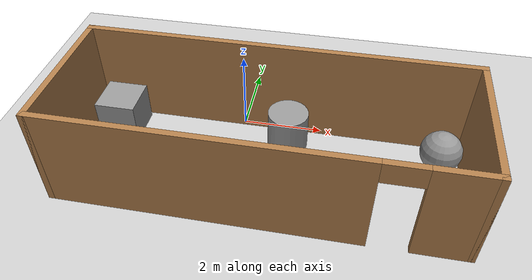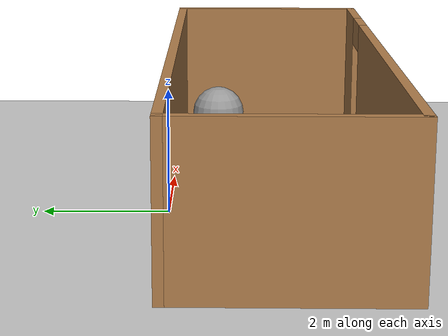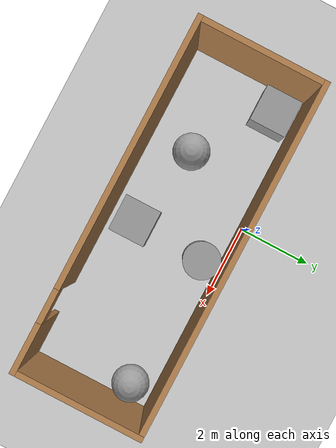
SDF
<sdf version="1.7">
 <world name="default">
  <light name="sun" type="directional">
   <pose>0 0 10 0 -0 0</pose>
   <diffuse>0.8 0.8 0.8 1</diffuse>
   <specular>0.2 0.2 0.2 1</specular>
   <attenuation>
    <range>1000</range>
    <constant>0.9</constant>
    <linear>0.01</linear>
    <quadratic>0.001</quadratic>
   </attenuation>
   <direction>-0.5 0.1 -0.9</direction>
   <spot><inner_angle>0</inner_angle><outer_angle>0</outer_angle><falloff>0</falloff></spot>
  </light>
  <model name="ground_plane">
   <static>1</static>
   <link name="link">
    <collision name="collision">
     <geometry><plane><normal>0 0 1</normal><size>100 100</size></plane></geometry>
     <surface>
      <contact><collide_bitmask>65535</collide_bitmask></contact>
      <friction><ode><mu>100</mu><mu2>50</mu2></ode></friction>
     </surface>
    </collision>
    <visual name="visual">
     <cast_shadows>0</cast_shadows>
     <geometry><plane><normal>0 0 1</normal><size>100 100</size></plane></geometry>
     <material>
      <script><uri>file://media/materials/scripts/gazebo.material</uri><name>Gazebo/Grey</name></script>
     </material>
    </visual>
   </link>
  </model>
  <gravity>0 0 -9.8</gravity>
  <magnetic_field>6e-06 2.3e-05 -4.2e-05</magnetic_field>
  <atmosphere type="adiabatic"/>
  <physics type="ode">
   <max_step_size>0.001</max_step_size>
   <real_time_factor>1</real_time_factor>
   <real_time_update_rate>1000</real_time_update_rate>
  </physics>
  <scene><ambient>0.4 0.4 0.4 1</ambient><background>0.7 0.7 0.7 1</background><shadows>1</shadows></scene>
  <spherical_coordinates>
   <surface_model>EARTH_WGS84</surface_model>
   <latitude_deg>0</latitude_deg>
   <longitude_deg>0</longitude_deg>
   <elevation>0</elevation>
   <heading_deg>0</heading_deg>
  </spherical_coordinates>
  <model name="Untitled">
   <pose>0.855 -1.715 0 0 -0 0</pose>
   <link name="Wall_0">
    <pose>-0 -1.675 0 0 -0 0</pose>
    <visual name="Wall_0_Visual_0">
     <pose>-1.12713 0 1.25 0 -0 0</pose>
     <geometry><box><size>7.24574 0.15 2.5</size></box></geometry>
     <material>
      <script><uri>file://media/materials/scripts/gazebo.material</uri><name>Gazebo/Wood</name></script>
      <ambient>1 1 1 1</ambient>
     </material>
     <meta><layer>0</layer></meta>
    </visual>
    <collision name="Wall_0_Collision_0">
     <geometry><box><size>7.24574 0.15 2.5</size></box></geometry>
     <pose>-1.12713 0 1.25 0 -0 0</pose>
    </collision>
    <visual name="Wall_0_Visual_1">
     <pose>4.07287 0 1.25 0 -0 0</pose>
     <geometry><box><size>1.35426 0.15 2.5</size></box></geometry>
     <material>
      <script><uri>file://media/materials/scripts/gazebo.material</uri><name>Gazebo/Wood</name></script>
      <ambient>1 1 1 1</ambient>
     </material>
     <meta><layer>0</layer></meta>
    </visual>
    <collision name="Wall_0_Collision_1">
     <geometry><box><size>1.35426 0.15 2.5</size></box></geometry>
     <pose>4.07287 0 1.25 0 -0 0</pose>
    </collision>
    <visual name="Wall_0_Visual_2">
     <pose>2.94574 0 2.25 0 -0 0</pose>
     <geometry><box><size>0.9 0.15 0.5</size></box></geometry>
     <material>
      <script><uri>file://media/materials/scripts/gazebo.material</uri><name>Gazebo/Wood</name></script>
      <ambient>1 1 1 1</ambient>
     </material>
     <meta><layer>0</layer></meta>
    </visual>
    <collision name="Wall_0_Collision_2">
     <geometry><box><size>0.9 0.15 0.5</size></box></geometry>
     <pose>2.94574 0 2.25 0 -0 0</pose>
    </collision>
   </link>
   <link name="Wall_1">
    <collision name="Wall_1_Collision">
     <geometry><box><size>3.5 0.15 2.5</size></box></geometry>
     <pose>0 0 1.25 0 -0 0</pose>
    </collision>
    <visual name="Wall_1_Visual">
     <pose>0 0 1.25 0 -0 0</pose>
     <geometry><box><size>3.5 0.15 2.5</size></box></geometry>
     <material>
      <script><uri>file://media/materials/scripts/gazebo.material</uri><name>Gazebo/Wood</name></script>
      <ambient>1 1 1 1</ambient>
     </material>
     <meta><layer>0</layer></meta>
    </visual>
    <pose>4.675 -0 0 0 -0 1.5708</pose>
   </link>
   <link name="Wall_2">
    <collision name="Wall_2_Collision">
     <geometry><box><size>9.5 0.15 2.5</size></box></geometry>
     <pose>0 0 1.25 0 -0 0</pose>
    </collision>
    <visual name="Wall_2_Visual">
     <pose>0 0 1.25 0 -0 0</pose>
     <geometry><box><size>9.5 0.15 2.5</size></box></geometry>
     <material>
      <script><uri>file://media/materials/scripts/gazebo.material</uri><name>Gazebo/Wood</name></script>
      <ambient>1 1 1 1</ambient>
     </material>
     <meta><layer>0</layer></meta>
    </visual>
    <pose>-0 1.675 0 0 -0 3.14159</pose>
   </link>
   <link name="Wall_3">
    <collision name="Wall_3_Collision">
     <geometry><box><size>3.5 0.15 2.5</size></box></geometry>
     <pose>0 0 1.25 0 -0 0</pose>
    </collision>
    <visual name="Wall_3_Visual">
     <pose>0 0 1.25 0 -0 0</pose>
     <geometry><box><size>3.5 0.15 2.5</size></box></geometry>
     <material>
      <script><uri>file://media/materials/scripts/gazebo.material</uri><name>Gazebo/Wood</name></script>
      <ambient>1 1 1 1</ambient>
     </material>
     <meta><layer>0</layer></meta>
    </visual>
    <pose>-4.675 -0 0 0 -0 -1.5708</pose>
   </link>
   <static>1</static>
  </model>
  <model name="unit_box">
   <pose>-3.05222 -0.71422 0.499995 0 1e-05 0</pose>
   <link name="link">
    <inertial>
     <mass>1</mass>
     <inertia>
      <ixx>0.166667</ixx>
      <ixy>0</ixy>
      <ixz>0</ixz>
      <iyy>0.166667</iyy>
      <iyz>0</iyz>
      <izz>0.166667</izz>
     </inertia>
    </inertial>
    <collision name="collision"><geometry><box><size>1 1 1</size></box></geometry></collision>
    <visual name="visual">
     <geometry><box><size>1 1 1</size></box></geometry>
     <material>
      <script><name>Gazebo/Grey</name><uri>file://media/materials/scripts/gazebo.material</uri></script>
     </material>
    </visual>
   </link>
  </model>
  <model name="unit_sphere">
   <pose>-1.17641 -2.16025 0.5 0 -0 0</pose>
   <link name="link">
    <inertial>
     <mass>1</mass>
     <inertia><ixx>0.1</ixx><ixy>0</ixy><ixz>0</ixz><iyy>0.1</iyy><iyz>0</iyz><izz>0.1</izz></inertia>
    </inertial>
    <collision name="collision"><geometry><sphere><radius>0.5</radius></sphere></geometry></collision>
    <visual name="visual">
     <geometry><sphere><radius>0.5</radius></sphere></geometry>
     <material>
      <script><name>Gazebo/Grey</name><uri>file://media/materials/scripts/gazebo.material</uri></script>
     </material>
    </visual>
   </link>
  </model>
  <model name="unit_cylinder">
   <pose>1.22232 -0.615012 0.499998 3e-06 4e-06 -0</pose>
   <link name="link">
    <inertial>
     <mass>1</mass>
     <inertia><ixx>0.145833</ixx><ixy>0</ixy><ixz>0</ixz><iyy>0.145833</iyy><iyz>0</iyz><izz>0.125</izz></inertia>
    </inertial>
    <collision name="collision">
     <geometry><cylinder><radius>0.5</radius><length>1</length></cylinder></geometry>
    </collision>
    <visual name="visual">
     <geometry><cylinder><radius>0.5</radius><length>1</length></cylinder></geometry>
     <material>
      <script><name>Gazebo/Grey</name><uri>file://media/materials/scripts/gazebo.material</uri></script>
     </material>
    </visual>
   </link>
  </model>
  <model name="unit_box_0">
   <pose>1.10887 -2.6104 0.499995 -1e-05 -0 0</pose>
   <link name="link">
    <inertial>
     <mass>1</mass>
     <inertia>
      <ixx>0.166667</ixx>
      <ixy>0</ixy>
      <ixz>0</ixz>
      <iyy>0.166667</iyy>
      <iyz>0</iyz>
      <izz>0.166667</izz>
     </inertia>
    </inertial>
    <collision name="collision"><geometry><box><size>1 1 1</size></box></geometry></collision>
    <visual name="visual">
     <geometry><box><size>1 1 1</size></box></geometry>
     <material>
      <script><name>Gazebo/Grey</name><uri>file://media/materials/scripts/gazebo.material</uri></script>
     </material>
    </visual>
   </link>
  </model>
  <model name="unit_sphere_0">
   <pose>4.94882 -0.752682 0.5 0 -0.012429 0</pose>
   <link name="link">
    <inertial>
     <mass>1</mass>
     <inertia><ixx>0.1</ixx><ixy>0</ixy><ixz>0</ixz><iyy>0.1</iyy><iyz>0</iyz><izz>0.1</izz></inertia>
    </inertial>
    <collision name="collision"><geometry><sphere><radius>0.5</radius></sphere></geometry></collision>
    <visual name="visual">
     <geometry><sphere><radius>0.5</radius></sphere></geometry>
     <material>
      <script><name>Gazebo/Grey</name><uri>file://media/materials/scripts/gazebo.material</uri></script>
     </material>
    </visual>
   </link>
  </model>
 </world>
</sdf>
